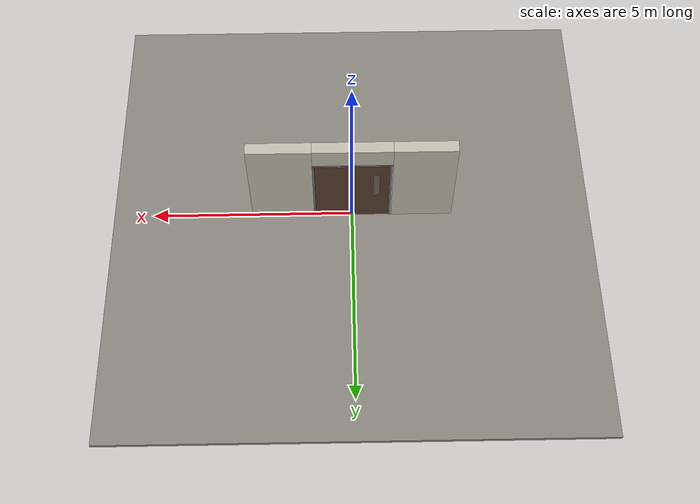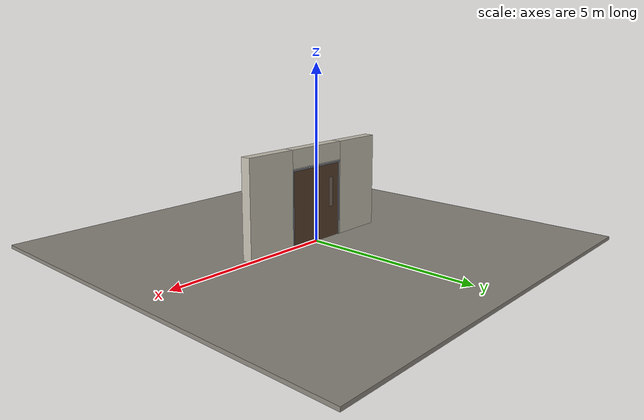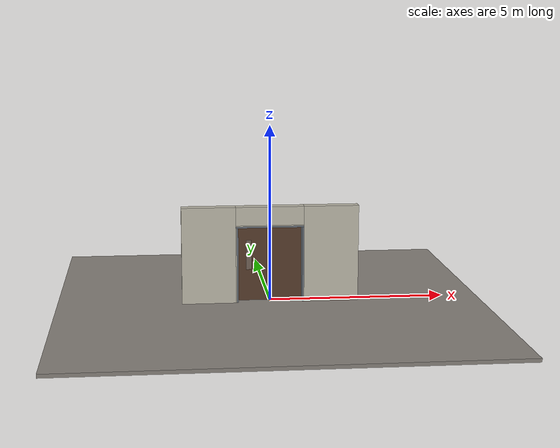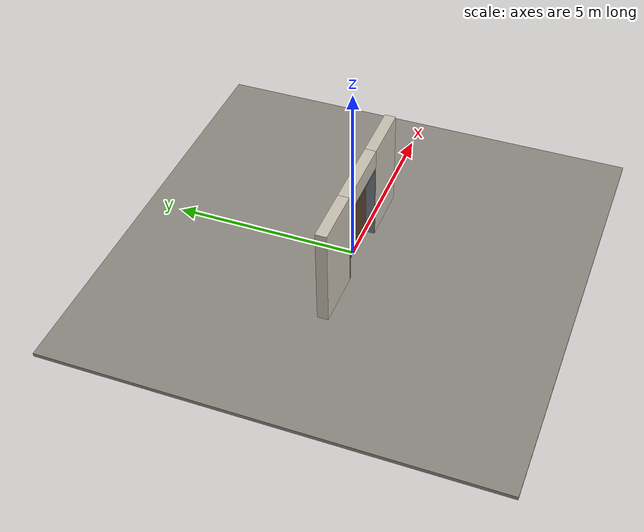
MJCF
<?xml version="1.0" ?>
<mujoco model="db0511_pivot_full">
  <compiler angle="radian" meshdir="../../hardware" texturedir="../../textures" autolimits="true" inertiafromgeom="false"/>
  <option timestep="0.002" integrator="implicitfast" cone="elliptic" impratio="10" noslip_iterations="3">
    <flag multiccd="enable"/>
  </option>
  <size memory="16M"/>
  <default>
    <geom condim="4" solref="0.005 1" solimp="0.95 0.99 0.001"/>
    <joint solreflimit="0.005 1" solimplimit="0.95 0.99 0.001"/>
    <tendon solreflimit="0.005 1"/>
    <equality solref="0.002 1"/>
  </default>
  <visual>
    <headlight ambient="0.4 0.4 0.4" diffuse="0.7 0.7 0.7" specular="0.2 0.2 0.2"/>
    <quality shadowsize="4096"/>
    <map znear="0.01" zfar="60"/>
  </visual>
  <asset>
    <material name="mat_floor" rgba="0.55 0.53 0.5 1" specular="0.2" shininess="0.15" reflectance="0"/>
    <material name="mat_wall" rgba="0.78 0.76 0.7 1" specular="0.2" shininess="0.1" reflectance="0"/>
    <material name="mat_leaf" rgba="0.36 0.25 0.18 1" specular="0.2" shininess="0.55" reflectance="0"/>
    <material name="mat_glass" rgba="0.85 0.92 0.95 0.25" specular="0.2" shininess="0.95" reflectance="0.1"/>
    <material name="mat_hinge" rgba="0.65 0.66 0.68 1" specular="0.74" shininess="0.5" reflectance="0.36"/>
    <material name="mat_frame" rgba="0.45 0.48 0.52 1" specular="0.32" shininess="0.6" reflectance="0.08"/>
    <texture name="skybox" type="skybox" builtin="gradient" rgb1="0.6 0.7 0.85" rgb2="0.9 0.92 0.95" width="256" height="256"/>
  </asset>
  <worldbody>
    <light name="sun" pos="1.5 -2.5 4" dir="-0.3 0.5 -0.8" directional="true" diffuse="0.8 0.8 0.8" specular="0.3 0.3 0.3" castshadow="true"/>
    <light name="fill" pos="-1.5 2.5 3" dir="0.3 -0.5 -0.7" directional="true" diffuse="0.35 0.35 0.4" castshadow="false"/>
    <camera name="robot_view" pos="0 -2.757375 1.811325" xyaxes="1 0 0 0 0.26963 0.962964" fovy="52"/>
    <camera name="far_view" pos="0 2.516375 1.811325" xyaxes="-1 0 0 0 -0.26963 0.962964" fovy="52"/>
    <camera name="iso" pos="-2.004025 -2.335475 2.233225" xyaxes="0.741536 -0.670913 0 0.242917 0.268487 0.932151" fovy="46"/>
    <camera name="detail_handle" pos="-0.614 -0.9205 1.33" xyaxes="0.97561 0.219512 0 -0.070934 0.315262 0.94635" fovy="38"/>
    <geom name="floor" type="box" size="6 6 0.05" pos="0 0 -0.05" material="mat_floor" group="0" contype="1" conaffinity="1" friction="0.8 0.005 0.0001" density="2400"/>
    <geom name="wall_left" type="box" size="0.7595 0.15 1.373" pos="-1.7405 -0.1205 1.373" material="mat_wall" group="0" contype="1" conaffinity="1" friction="0.6 0.005 0.0001" density="800"/>
    <geom name="wall_right" type="box" size="0.7745 0.15 1.373" pos="1.7255 -0.1205 1.373" material="mat_wall" group="0" contype="1" conaffinity="1" friction="0.6 0.005 0.0001" density="800"/>
    <geom name="wall_header" type="box" size="0.966 0.15 0.2625" pos="-0.015 -0.1205 2.4835" material="mat_wall" group="0" contype="1" conaffinity="1" friction="0.6 0.005 0.0001" density="800"/>
    <geom name="pivot_bottom_socket" type="box" size="0.035 0.035 0.008" pos="0.312 0 -0.002" material="mat_hinge" group="1" contype="0" conaffinity="0" density="7850"/>
    <geom name="pivot_top_bracket" type="box" size="0.035 0.035 0.0355" pos="0.312 0 2.1855" material="mat_hinge" group="1" contype="0" conaffinity="0" density="7850"/>
    <geom name="jamb_hinge" type="box" size="0.0225 0.15 1.073" pos="0.9285 -0.1205 1.073" material="mat_frame" group="0" contype="1" conaffinity="1" friction="0.6 0.005 0.0001" density="300"/>
    <geom name="jamb_strike" type="box" size="0.0225 0.15 1.073" pos="-0.9285 -0.1205 1.073" material="mat_frame" group="0" contype="1" conaffinity="1" friction="0.6 0.005 0.0001" density="300"/>
    <geom name="stud_strike" type="box" size="0.015 0.15 1.073" pos="-0.966 -0.1205 1.073" material="mat_wall" group="0" contype="1" conaffinity="1" friction="0.6 0.005 0.0001" density="500"/>
    <geom name="jamb_head" type="box" size="0.966 0.15 0.0225" pos="-0.015 -0.1205 2.1685" material="mat_frame" group="0" contype="1" conaffinity="1" friction="0.6 0.005 0.0001" density="300"/>
    <geom name="head_stud" type="box" size="0.966 0.15 0.015" pos="-0.015 -0.1205 2.206" material="mat_wall" group="0" contype="1" conaffinity="1" friction="0.6 0.005 0.0001" density="500"/>
    <site name="approach_point" pos="0 -1.5 0" quat="1 0 0 0" size="0.05" rgba="0.2 0.9 0.2 0.5" group="4"/>
    <site name="goal_point" pos="0 1.5 0" quat="1 0 0 0" size="0.05" rgba="0.2 0.9 0.2 0.5" group="4"/>
    <site name="door_plane_center" pos="0 0 1.073" quat="1 0 0 0" size="0.02" rgba="0.2 0.9 0.2 0.5" group="4"/>
    <body name="leaf" pos="0.906 0 0">
      <inertial pos="-0.905798 0 1.075015" mass="108.487042" quat="0.499979 0.499979 -0.500021 0.500021" diaginertia="29.296157656 41.250344078 70.509906902"/>
      <joint name="leaf_hinge" type="hinge" axis="0 0 -1" pos="-0.594 0 0" limited="true" range="0 1.919862" damping="4.095779" frictionloss="2.099296" armature="0.02"/>
      <geom name="leaf_slab" type="box" size="0.9 0.0225 1.067" pos="-0.906 0 1.075" material="mat_leaf" group="0" contype="1" conaffinity="1" friction="0.35 0.005 0.0001" density="1"/>
      <geom name="leaf_glass_0" type="box" size="0.075 0.0233 0.4268" pos="-1.503 0 1.33108" material="mat_glass" group="1" contype="0" conaffinity="0" density="1"/>
      <geom name="pivot_bottom" type="cylinder" size="0.014 0.004" pos="-0.594 0 0.003" material="mat_hinge" group="1" contype="0" conaffinity="0" density="7850"/>
      <geom name="pivot_top" type="cylinder" size="0.014 0.004" pos="-0.594 0 2.146" material="mat_hinge" group="1" contype="0" conaffinity="0" density="7850"/>
      <site name="leaf_edge_mid" pos="-1.806 0 1.067" quat="1 0 0 0" size="0.02" rgba="0.2 0.9 0.2 0.5" group="4"/>
    </body>
  </worldbody>
  <sensor>
    <jointpos name="leaf_hinge_pos" joint="leaf_hinge"/>
    <jointvel name="leaf_hinge_vel" joint="leaf_hinge"/>
  </sensor>
</mujoco>
